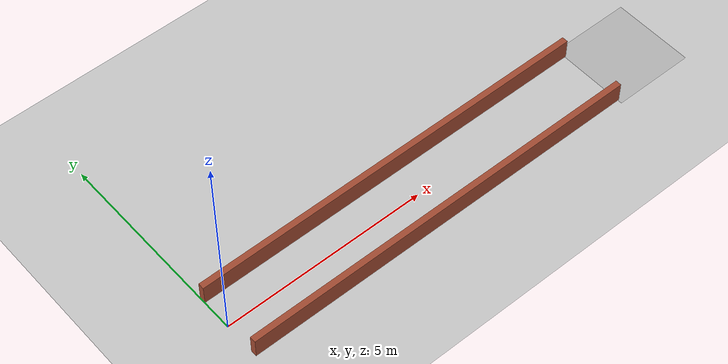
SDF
<sdf version="1.6">
 <world name="default">
  <light name="sun" type="directional">
   <pose>0 0 10 0 -0 0</pose>
   <diffuse>0.8 0.8 0.8 1</diffuse>
   <specular>0.2 0.2 0.2 1</specular>
   <attenuation>
    <range>1000</range>
    <constant>0.9</constant>
    <linear>0.01</linear>
    <quadratic>0.001</quadratic>
   </attenuation>
   <direction>-0.5 0.1 -0.9</direction>
  </light>
  <model name="ground_plane">
   <static>1</static>
   <link name="link">
    <collision name="collision">
     <geometry><plane><normal>0 0 1</normal><size>100 100</size></plane></geometry>
     <surface>
      <contact><collide_bitmask>65535</collide_bitmask></contact>
      <friction><ode><mu>100</mu><mu2>50</mu2></ode></friction>
     </surface>
    </collision>
    <visual name="visual">
     <cast_shadows>0</cast_shadows>
     <geometry><plane><normal>0 0 1</normal><size>100 100</size></plane></geometry>
     <material>
      <script><uri>file://media/materials/scripts/gazebo.material</uri><name>Gazebo/Grey</name></script>
     </material>
    </visual>
   </link>
  </model>
  <gravity>0 0 -9.8</gravity>
  <magnetic_field>6e-06 2.3e-05 -4.2e-05</magnetic_field>
  <atmosphere type="adiabatic"/>
  <physics name="default_physics" default="0" type="ode">
   <max_step_size>0.001</max_step_size>
   <real_time_factor>1</real_time_factor>
   <real_time_update_rate>1000</real_time_update_rate>
  </physics>
  <scene><ambient>0.4 0.4 0.4 1</ambient><background>0.7 0.7 0.7 1</background><shadows>1</shadows></scene>
  <audio><device>default</device></audio>
  <spherical_coordinates>
   <surface_model>EARTH_WGS84</surface_model>
   <latitude_deg>0</latitude_deg>
   <longitude_deg>0</longitude_deg>
   <elevation>0</elevation>
   <heading_deg>0</heading_deg>
  </spherical_coordinates>
  <model name="laberinto_01">
   <link name="Wall_0">
    <collision name="Wall_0_Collision">
     <geometry><box><size>10 0.15 0.5</size></box></geometry>
     <pose>0 0 0.25 0 -0 0</pose>
    </collision>
    <visual name="Wall_0_Visual">
     <pose>0 0 0.25 0 -0 0</pose>
     <geometry><box><size>10 0.15 0.5</size></box></geometry>
     <material>
      <script><uri>file://media/materials/scripts/gazebo.material</uri><name>Gazebo/Bricks</name></script>
      <ambient>1 1 1 1</ambient>
     </material>
     <meta><layer>0</layer></meta>
    </visual>
    <pose>5 0.82 0 0 0 0</pose>
   </link>
   <link name="Wall_2">
    <collision name="Wall_2_Collision">
     <geometry><box><size>10 0.15 0.5</size></box></geometry>
     <pose>0 0 0.25 0 -0 0</pose>
    </collision>
    <visual name="Wall_2_Visual">
     <pose>0 0 0.25 0 -0 0</pose>
     <geometry><box><size>10 0.15 0.5</size></box></geometry>
     <material>
      <script><uri>file://media/materials/scripts/gazebo.material</uri><name>Gazebo/Bricks</name></script>
      <ambient>1 1 1 1</ambient>
     </material>
     <meta><layer>0</layer></meta>
    </visual>
    <pose>5 -0.82 0 0 0 0</pose>
   </link>
   <static>1</static>
  </model>
  <model name="checkerboard_plane">
   <static>1</static>
   <link name="link">
    <visual name="visual">
     <geometry><mesh><uri>model://checkerboard_plane/meshes/checkerboard_plane.dae</uri></mesh></geometry>
    </visual>
   </link>
   <pose>10.9757 -0.001003 0 0 -0 0</pose>
  </model>
  <light name="user_point_light_0" type="point">
   <pose>0.630553 -0.047277 1 0 -0 0</pose>
   <diffuse>0.5 0.5 0.5 1</diffuse>
   <specular>0.1 0.1 0.1 1</specular>
   <attenuation>
    <range>20</range>
    <constant>0.5</constant>
    <linear>0.01</linear>
    <quadratic>0.001</quadratic>
   </attenuation>
   <cast_shadows>0</cast_shadows>
   <direction>0 0 -1</direction>
  </light>
 </world>
</sdf>
